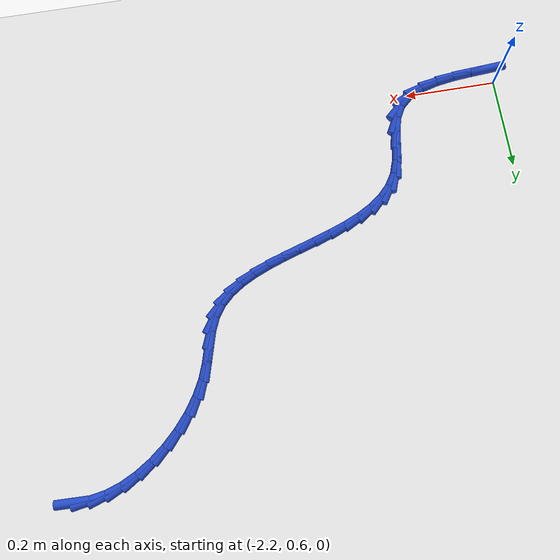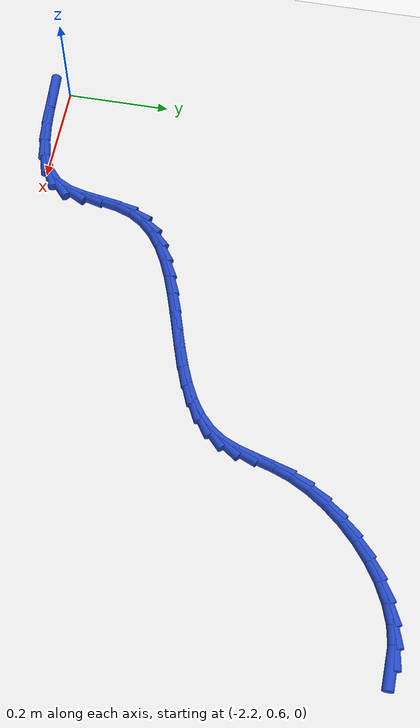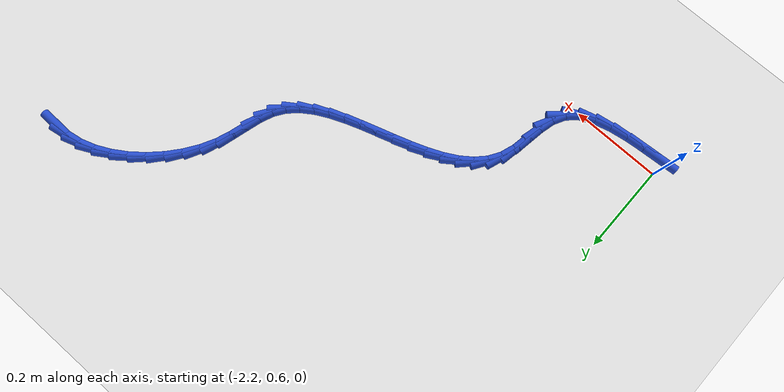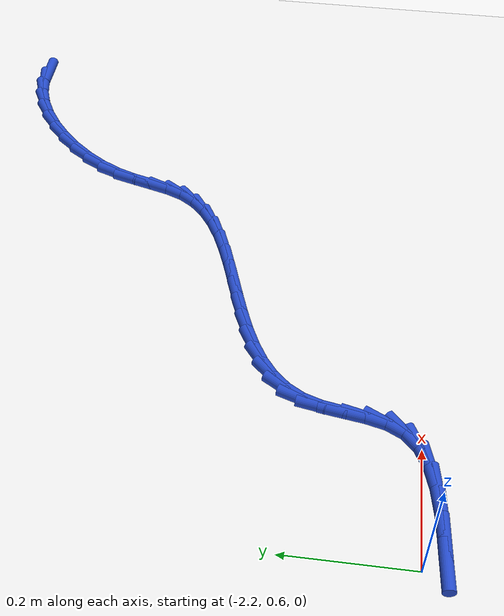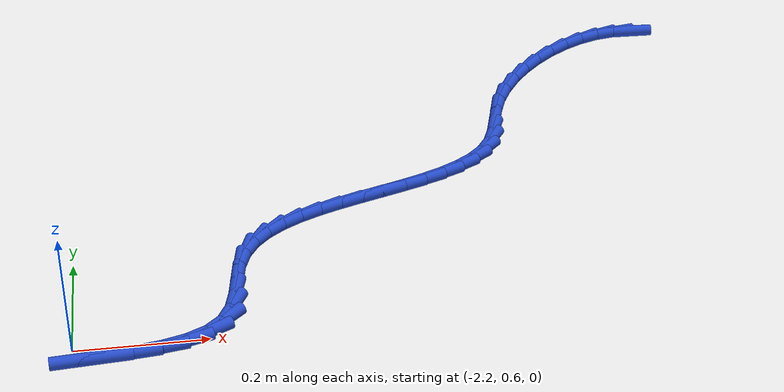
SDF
<sdf version="1.6">
 <world name="default">
  <model name="ground_plane">
   <static>1</static>
   <link name="link">
    <collision name="collision">
     <geometry><plane><normal>0 0 1</normal><size>100 100</size></plane></geometry>
     <surface><friction><ode><mu>100</mu><mu2>50</mu2></ode></friction></surface>
    </collision>
    <visual name="visual">
     <cast_shadows>0</cast_shadows>
     <geometry><plane><normal>0 0 1</normal><size>100 100</size></plane></geometry>
     <material>
      <script><uri>file://media/materials/scripts/gazebo.material</uri><name>Gazebo/WhiteGlow</name></script>
     </material>
    </visual>
   </link>
  </model>
  <model name="line">
   <link name="link_58">
    <pose>-1.1848035570198805 1.355584770819409 0.01 0 1.57 -0.029114231427330307</pose>
    <collision name="collision">
     <geometry><cylinder><radius>0.01</radius><length>0.08</length></cylinder></geometry>
    </collision>
    <visual name="visual">
     <material>
      <script><name>Gazebo/Blue</name><uri>file://media/materials/scripts/gazebo.material</uri></script>
     </material>
     <geometry><cylinder><radius>0.01</radius><length>0.08</length></cylinder></geometry>
    </visual>
   </link>
   <link name="link_59">
    <pose>-1.2160995093490654 1.3564961859496556 0.01 0 1.57 0.16479844236933405</pose>
    <collision name="collision">
     <geometry><cylinder><radius>0.01</radius><length>0.08</length></cylinder></geometry>
    </collision>
    <visual name="visual">
     <material>
      <script><name>Gazebo/Blue</name><uri>file://media/materials/scripts/gazebo.material</uri></script>
     </material>
     <geometry><cylinder><radius>0.01</radius><length>0.08</length></cylinder></geometry>
    </visual>
   </link>
   <link name="link_60">
    <pose>-1.2484608388915135 1.3511142792534978 0.01 0 1.57 0.32496269955815726</pose>
    <collision name="collision">
     <geometry><cylinder><radius>0.01</radius><length>0.08</length></cylinder></geometry>
    </collision>
    <visual name="visual">
     <material>
      <script><name>Gazebo/Blue</name><uri>file://media/materials/scripts/gazebo.material</uri></script>
     </material>
     <geometry><cylinder><radius>0.01</radius><length>0.08</length></cylinder></geometry>
    </visual>
   </link>
   <link name="link_61">
    <pose>-1.2812260820280374 1.340075464996889 0.01 0 1.57 0.4588486390109197</pose>
    <collision name="collision">
     <geometry><cylinder><radius>0.01</radius><length>0.08</length></cylinder></geometry>
    </collision>
    <visual name="visual">
     <material>
      <script><name>Gazebo/Blue</name><uri>file://media/materials/scripts/gazebo.material</uri></script>
     </material>
     <geometry><cylinder><radius>0.01</radius><length>0.08</length></cylinder></geometry>
    </visual>
   </link>
   <link name="link_62">
    <pose>-1.3137337751394498 1.3240161574457836 0.01 0 1.57 0.5743863355615457</pose>
    <collision name="collision">
     <geometry><cylinder><radius>0.01</radius><length>0.08</length></cylinder></geometry>
    </collision>
    <visual name="visual">
     <material>
      <script><name>Gazebo/Blue</name><uri>file://media/materials/scripts/gazebo.material</uri></script>
     </material>
     <geometry><cylinder><radius>0.01</radius><length>0.08</length></cylinder></geometry>
    </visual>
   </link>
   <link name="link_63">
    <pose>-1.3453224546065645 1.303572770866135 0.01 0 1.57 0.6784784791155526</pose>
    <collision name="collision">
     <geometry><cylinder><radius>0.01</radius><length>0.08</length></cylinder></geometry>
    </collision>
    <visual name="visual">
     <material>
      <script><name>Gazebo/Blue</name><uri>file://media/materials/scripts/gazebo.material</uri></script>
     </material>
     <geometry><cylinder><radius>0.01</radius><length>0.08</length></cylinder></geometry>
    </visual>
   </link>
   <link name="link_64">
    <pose>-1.375330656810193 1.2793817195238983 0.01 0 1.57 0.7769732385723196</pose>
    <collision name="collision">
     <geometry><cylinder><radius>0.01</radius><length>0.08</length></cylinder></geometry>
    </collision>
    <visual name="visual">
     <material>
      <script><name>Gazebo/Blue</name><uri>file://media/materials/scripts/gazebo.material</uri></script>
     </material>
     <geometry><cylinder><radius>0.01</radius><length>0.08</length></cylinder></geometry>
    </visual>
   </link>
   <link name="link_65">
    <pose>-1.4030969181311483 1.2520794176850265 0.01 0 1.57 0.8750960951735991</pose>
    <collision name="collision">
     <geometry><cylinder><radius>0.01</radius><length>0.08</length></cylinder></geometry>
    </collision>
    <visual name="visual">
     <material>
      <script><name>Gazebo/Blue</name><uri>file://media/materials/scripts/gazebo.material</uri></script>
     </material>
     <geometry><cylinder><radius>0.01</radius><length>0.08</length></cylinder></geometry>
    </visual>
   </link>
   <link name="link_66">
    <pose>-1.427959774950244 1.2223022796154734 0.01 0 1.57 0.9779710510233154</pose>
    <collision name="collision">
     <geometry><cylinder><radius>0.01</radius><length>0.08</length></cylinder></geometry>
    </collision>
    <visual name="visual">
     <material>
      <script><name>Gazebo/Blue</name><uri>file://media/materials/scripts/gazebo.material</uri></script>
     </material>
     <geometry><cylinder><radius>0.01</radius><length>0.08</length></cylinder></geometry>
    </visual>
   </link>
   <link name="link_67">
    <pose>-1.4492577636482915 1.190686719581194 0.01 0 1.57 1.0911206188467832</pose>
    <collision name="collision">
     <geometry><cylinder><radius>0.01</radius><length>0.08</length></cylinder></geometry>
    </collision>
    <visual name="visual">
     <material>
      <script><name>Gazebo/Blue</name><uri>file://media/materials/scripts/gazebo.material</uri></script>
     </material>
     <geometry><cylinder><radius>0.01</radius><length>0.08</length></cylinder></geometry>
    </visual>
   </link>
   <link name="link_68">
    <pose>-1.466329420606105 1.1578691518481417 0.01 0 1.57 1.216204776297123</pose>
    <collision name="collision">
     <geometry><cylinder><radius>0.01</radius><length>0.08</length></cylinder></geometry>
    </collision>
    <visual name="visual">
     <material>
      <script><name>Gazebo/Blue</name><uri>file://media/materials/scripts/gazebo.material</uri></script>
     </material>
     <geometry><cylinder><radius>0.01</radius><length>0.08</length></cylinder></geometry>
    </visual>
   </link>
   <link name="link_69">
    <pose>-1.4786794836276835 1.1245122961461333 0.01 0 1.57 1.2989064659948744</pose>
    <collision name="collision">
     <geometry><cylinder><radius>0.01</radius><length>0.08</length></cylinder></geometry>
    </collision>
    <visual name="visual">
     <material>
      <script><name>Gazebo/Blue</name><uri>file://media/materials/scripts/gazebo.material</uri></script>
     </material>
     <geometry><cylinder><radius>0.01</radius><length>0.08</length></cylinder></geometry>
    </visual>
   </link>
   <link name="link_70">
    <pose>-1.487854653164944 1.0916020630273882 0.01 0 1.57 1.2928845797492947</pose>
    <collision name="collision">
     <geometry><cylinder><radius>0.01</radius><length>0.08</length></cylinder></geometry>
    </collision>
    <visual name="visual">
     <material>
      <script><name>Gazebo/Blue</name><uri>file://media/materials/scripts/gazebo.material</uri></script>
     </material>
     <geometry><cylinder><radius>0.01</radius><length>0.08</length></cylinder></geometry>
    </visual>
   </link>
   <link name="link_71">
    <pose>-1.4967731451730233 1.0603414391125232 0.01 0 1.57 1.1829111299774673</pose>
    <collision name="collision">
     <geometry><cylinder><radius>0.01</radius><length>0.08</length></cylinder></geometry>
    </collision>
    <visual name="visual">
     <material>
      <script><name>Gazebo/Blue</name><uri>file://media/materials/scripts/gazebo.material</uri></script>
     </material>
     <geometry><cylinder><radius>0.01</radius><length>0.08</length></cylinder></geometry>
    </visual>
   </link>
   <link name="link_72">
    <pose>-1.5083785934705554 1.0319374340243461 0.01 0 1.57 0.9725657130226586</pose>
    <collision name="collision">
     <geometry><cylinder><radius>0.01</radius><length>0.08</length></cylinder></geometry>
    </collision>
    <visual name="visual">
     <material>
      <script><name>Gazebo/Blue</name><uri>file://media/materials/scripts/gazebo.material</uri></script>
     </material>
     <geometry><cylinder><radius>0.01</radius><length>0.08</length></cylinder></geometry>
    </visual>
   </link>
   <link name="link_73">
    <pose>-1.525126243808694 1.0073642745656446 0.01 0 1.57 0.7636749871799272</pose>
    <collision name="collision">
     <geometry><cylinder><radius>0.01</radius><length>0.08</length></cylinder></geometry>
    </collision>
    <visual name="visual">
     <material>
      <script><name>Gazebo/Blue</name><uri>file://media/materials/scripts/gazebo.material</uri></script>
     </material>
     <geometry><cylinder><radius>0.01</radius><length>0.08</length></cylinder></geometry>
    </visual>
   </link>
   <link name="link_74">
    <pose>-1.5470017652410109 0.9864191009840713 0.01 0 1.57 0.598954644999353</pose>
    <collision name="collision">
     <geometry><cylinder><radius>0.01</radius><length>0.08</length></cylinder></geometry>
    </collision>
    <visual name="visual">
     <material>
      <script><name>Gazebo/Blue</name><uri>file://media/materials/scripts/gazebo.material</uri></script>
     </material>
     <geometry><cylinder><radius>0.01</radius><length>0.08</length></cylinder></geometry>
    </visual>
   </link>
   <link name="link_75">
    <pose>-1.5732120615632186 0.9685278667908941 0.01 0 1.57 0.47794662828195617</pose>
    <collision name="collision">
     <geometry><cylinder><radius>0.01</radius><length>0.08</length></cylinder></geometry>
    </collision>
    <visual name="visual">
     <material>
      <script><name>Gazebo/Blue</name><uri>file://media/materials/scripts/gazebo.material</uri></script>
     </material>
     <geometry><cylinder><radius>0.01</radius><length>0.08</length></cylinder></geometry>
    </visual>
   </link>
   <link name="link_76">
    <pose>-1.6029637425895902 0.9531163853755519 0.01 0 1.57 0.39385697624293586</pose>
    <collision name="collision">
     <geometry><cylinder><radius>0.01</radius><length>0.08</length></cylinder></geometry>
    </collision>
    <visual name="visual">
     <material>
      <script><name>Gazebo/Blue</name><uri>file://media/materials/scripts/gazebo.material</uri></script>
     </material>
     <geometry><cylinder><radius>0.01</radius><length>0.08</length></cylinder></geometry>
    </visual>
   </link>
   <link name="link_77">
    <pose>-1.6354634181343974 0.9396104701274834 0.01 0 1.57 0.3396590966669234</pose>
    <collision name="collision">
     <geometry><cylinder><radius>0.01</radius><length>0.08</length></cylinder></geometry>
    </collision>
    <visual name="visual">
     <material>
      <script><name>Gazebo/Blue</name><uri>file://media/materials/scripts/gazebo.material</uri></script>
     </material>
     <geometry><cylinder><radius>0.01</radius><length>0.08</length></cylinder></geometry>
    </visual>
   </link>
   <link name="link_78">
    <pose>-1.6699176980119135 0.9274359344361278 0.01 0 1.57 0.3102220469603327</pose>
    <collision name="collision">
     <geometry><cylinder><radius>0.01</radius><length>0.08</length></cylinder></geometry>
    </collision>
    <visual name="visual">
     <material>
      <script><name>Gazebo/Blue</name><uri>file://media/materials/scripts/gazebo.material</uri></script>
     </material>
     <geometry><cylinder><radius>0.01</radius><length>0.08</length></cylinder></geometry>
    </visual>
   </link>
   <link name="link_79">
    <pose>-1.7055331920364096 0.9160185916909241 0.01 0 1.57 0.302620259878519</pose>
    <collision name="collision">
     <geometry><cylinder><radius>0.01</radius><length>0.08</length></cylinder></geometry>
    </collision>
    <visual name="visual">
     <material>
      <script><name>Gazebo/Blue</name><uri>file://media/materials/scripts/gazebo.material</uri></script>
     </material>
     <geometry><cylinder><radius>0.01</radius><length>0.08</length></cylinder></geometry>
    </visual>
   </link>
   <link name="link_80">
    <pose>-1.741516510022159 0.9047842552813116 0.01 0 1.57 0.3159923020732963</pose>
    <collision name="collision">
     <geometry><cylinder><radius>0.01</radius><length>0.08</length></cylinder></geometry>
    </collision>
    <visual name="visual">
     <material>
      <script><name>Gazebo/Blue</name><uri>file://media/materials/scripts/gazebo.material</uri></script>
     </material>
     <geometry><cylinder><radius>0.01</radius><length>0.08</length></cylinder></geometry>
    </visual>
   </link>
   <link name="link_81">
    <pose>-1.7770742617834347 0.8931587385967289 0.01 0 1.57 0.3514445871361449</pose>
    <collision name="collision">
     <geometry><cylinder><radius>0.01</radius><length>0.08</length></cylinder></geometry>
    </collision>
    <visual name="visual">
     <material>
      <script><name>Gazebo/Blue</name><uri>file://media/materials/scripts/gazebo.material</uri></script>
     </material>
     <geometry><cylinder><radius>0.01</radius><length>0.08</length></cylinder></geometry>
    </visual>
   </link>
   <link name="link_82">
    <pose>-1.8114130571345077 0.8805678550266156 0.01 0 1.57 0.4120888435364971</pose>
    <collision name="collision">
     <geometry><cylinder><radius>0.01</radius><length>0.08</length></cylinder></geometry>
    </collision>
    <visual name="visual">
     <material>
      <script><name>Gazebo/Blue</name><uri>file://media/materials/scripts/gazebo.material</uri></script>
     </material>
     <geometry><cylinder><radius>0.01</radius><length>0.08</length></cylinder></geometry>
    </visual>
   </link>
   <link name="link_83">
    <pose>-1.8437395058896509 0.8664374179604101 0.01 0 1.57 0.5030456705671249</pose>
    <collision name="collision">
     <geometry><cylinder><radius>0.01</radius><length>0.08</length></cylinder></geometry>
    </collision>
    <visual name="visual">
     <material>
      <script><name>Gazebo/Blue</name><uri>file://media/materials/scripts/gazebo.material</uri></script>
     </material>
     <geometry><cylinder><radius>0.01</radius><length>0.08</length></cylinder></geometry>
    </visual>
   </link>
   <link name="link_84">
    <pose>-1.8732602178631368 0.8501932407875517 0.01 0 1.57 0.6308129449393444</pose>
    <collision name="collision">
     <geometry><cylinder><radius>0.01</radius><length>0.08</length></cylinder></geometry>
    </collision>
    <visual name="visual">
     <material>
      <script><name>Gazebo/Blue</name><uri>file://media/materials/scripts/gazebo.material</uri></script>
     </material>
     <geometry><cylinder><radius>0.01</radius><length>0.08</length></cylinder></geometry>
    </visual>
   </link>
   <link name="link_85">
    <pose>-1.899181802869238 0.8312611368974793 0.01 0 1.57 0.8006096933608655</pose>
    <collision name="collision">
     <geometry><cylinder><radius>0.01</radius><length>0.08</length></cylinder></geometry>
    </collision>
    <visual name="visual">
     <material>
      <script><name>Gazebo/Blue</name><uri>file://media/materials/scripts/gazebo.material</uri></script>
     </material>
     <geometry><cylinder><radius>0.01</radius><length>0.08</length></cylinder></geometry>
    </visual>
   </link>
   <link name="link_86">
    <pose>-1.9207108707222265 0.8090669196796321 0.01 0 1.57 1.0101529445806774</pose>
    <collision name="collision">
     <geometry><cylinder><radius>0.01</radius><length>0.08</length></cylinder></geometry>
    </collision>
    <visual name="visual">
     <material>
      <script><name>Gazebo/Blue</name><uri>file://media/materials/scripts/gazebo.material</uri></script>
     </material>
     <geometry><cylinder><radius>0.01</radius><length>0.08</length></cylinder></geometry>
    </visual>
   </link>
   <link name="link_87">
    <pose>-1.937054031236375 0.7830364025234496 0.01 0 1.57 1.2382098703167261</pose>
    <collision name="collision">
     <geometry><cylinder><radius>0.01</radius><length>0.08</length></cylinder></geometry>
    </collision>
    <visual name="visual">
     <material>
      <script><name>Gazebo/Blue</name><uri>file://media/materials/scripts/gazebo.material</uri></script>
     </material>
     <geometry><cylinder><radius>0.01</radius><length>0.08</length></cylinder></geometry>
    </visual>
   </link>
   <link name="link_88">
    <pose>-1.947538081852674 0.752684566456801 0.01 0 1.57 1.3889765788682003</pose>
    <collision name="collision">
     <geometry><cylinder><radius>0.01</radius><length>0.08</length></cylinder></geometry>
    </collision>
    <visual name="visual">
     <material>
      <script><name>Gazebo/Blue</name><uri>file://media/materials/scripts/gazebo.material</uri></script>
     </material>
     <geometry><cylinder><radius>0.01</radius><length>0.08</length></cylinder></geometry>
    </visual>
   </link>
   <link name="link_89">
    <pose>-1.9537003970023217 0.719166427635705 0.01 0 1.57 1.4160232322478363</pose>
    <collision name="collision">
     <geometry><cylinder><radius>0.01</radius><length>0.08</length></cylinder></geometry>
    </collision>
    <visual name="visual">
     <material>
      <script><name>Gazebo/Blue</name><uri>file://media/materials/scripts/gazebo.material</uri></script>
     </material>
     <geometry><cylinder><radius>0.01</radius><length>0.08</length></cylinder></geometry>
    </visual>
   </link>
   <link name="link_90">
    <pose>-1.959019085179136 0.6850768398925834 0.01 0 1.57 1.3253830938458213</pose>
    <collision name="collision">
     <geometry><cylinder><radius>0.01</radius><length>0.08</length></cylinder></geometry>
    </collision>
    <visual name="visual">
     <material>
      <script><name>Gazebo/Blue</name><uri>file://media/materials/scripts/gazebo.material</uri></script>
     </material>
     <geometry><cylinder><radius>0.01</radius><length>0.08</length></cylinder></geometry>
    </visual>
   </link>
   <link name="link_91">
    <pose>-1.9670381870175515 0.65305957235535 0.01 0 1.57 1.0893518231357306</pose>
    <collision name="collision">
     <geometry><cylinder><radius>0.01</radius><length>0.08</length></cylinder></geometry>
    </collision>
    <visual name="visual">
     <material>
      <script><name>Gazebo/Blue</name><uri>file://media/materials/scripts/gazebo.material</uri></script>
     </material>
     <geometry><cylinder><radius>0.01</radius><length>0.08</length></cylinder></geometry>
    </visual>
   </link>
   <link name="link_92">
    <pose>-1.9813016670396575 0.6257583416280741 0.01 0 1.57 0.7321118542181292</pose>
    <collision name="collision">
     <geometry><cylinder><radius>0.01</radius><length>0.08</length></cylinder></geometry>
    </collision>
    <visual name="visual">
     <material>
      <script><name>Gazebo/Blue</name><uri>file://media/materials/scripts/gazebo.material</uri></script>
     </material>
     <geometry><cylinder><radius>0.01</radius><length>0.08</length></cylinder></geometry>
    </visual>
   </link>
   <link name="link_93">
    <pose>-2.0042995145551417 0.6050895338092601 0.01 0 1.57 0.44817514896227917</pose>
    <collision name="collision">
     <geometry><cylinder><radius>0.01</radius><length>0.08</length></cylinder></geometry>
    </collision>
    <visual name="visual">
     <material>
      <script><name>Gazebo/Blue</name><uri>file://media/materials/scripts/gazebo.material</uri></script>
     </material>
     <geometry><cylinder><radius>0.01</radius><length>0.08</length></cylinder></geometry>
    </visual>
   </link>
   <link name="link_94">
    <pose>-2.034820041354503 0.5904150698166505 0.01 0 1.57 0.2676790737007418</pose>
    <collision name="collision">
     <geometry><cylinder><radius>0.01</radius><length>0.08</length></cylinder></geometry>
    </collision>
    <visual name="visual">
     <material>
      <script><name>Gazebo/Blue</name><uri>file://media/materials/scripts/gazebo.material</uri></script>
     </material>
     <geometry><cylinder><radius>0.01</radius><length>0.08</length></cylinder></geometry>
    </visual>
   </link>
   <link name="link_95">
    <pose>-2.070839348099777 0.5805363773763645 0.01 0 1.57 0.15772742214202082</pose>
    <collision name="collision">
     <geometry><cylinder><radius>0.01</radius><length>0.08</length></cylinder></geometry>
    </collision>
    <visual name="visual">
     <material>
      <script><name>Gazebo/Blue</name><uri>file://media/materials/scripts/gazebo.material</uri></script>
     </material>
     <geometry><cylinder><radius>0.01</radius><length>0.08</length></cylinder></geometry>
    </visual>
   </link>
   <link name="link_96">
    <pose>-2.1103335354530026 0.5742548842145212 0.01 0 1.57 0.09454813077324842</pose>
    <collision name="collision">
     <geometry><cylinder><radius>0.01</radius><length>0.08</length></cylinder></geometry>
    </collision>
    <visual name="visual">
     <material>
      <script><name>Gazebo/Blue</name><uri>file://media/materials/scripts/gazebo.material</uri></script>
     </material>
     <geometry><cylinder><radius>0.01</radius><length>0.08</length></cylinder></geometry>
    </visual>
   </link>
   <link name="link_97">
    <pose>-2.151278704076213 0.5703720180572398 0.01 0 1.57 0.06635431155918217</pose>
    <collision name="collision">
     <geometry><cylinder><radius>0.01</radius><length>0.08</length></cylinder></geometry>
    </collision>
    <visual name="visual">
     <material>
      <script><name>Gazebo/Blue</name><uri>file://media/materials/scripts/gazebo.material</uri></script>
     </material>
     <geometry><cylinder><radius>0.01</radius><length>0.08</length></cylinder></geometry>
    </visual>
   </link>
   <link name="link_98">
    <pose>-2.191650954631445 0.5676892066306399 0.01 0 1.57 0.07086191277047028</pose>
    <collision name="collision">
     <geometry><cylinder><radius>0.01</radius><length>0.08</length></cylinder></geometry>
    </collision>
    <visual name="visual">
     <material>
      <script><name>Gazebo/Blue</name><uri>file://media/materials/scripts/gazebo.material</uri></script>
     </material>
     <geometry><cylinder><radius>0.01</radius><length>0.08</length></cylinder></geometry>
    </visual>
   </link>
  </model>
 </world>
</sdf>
